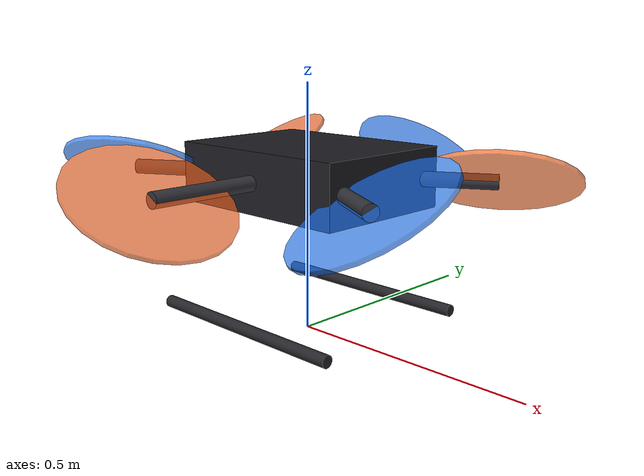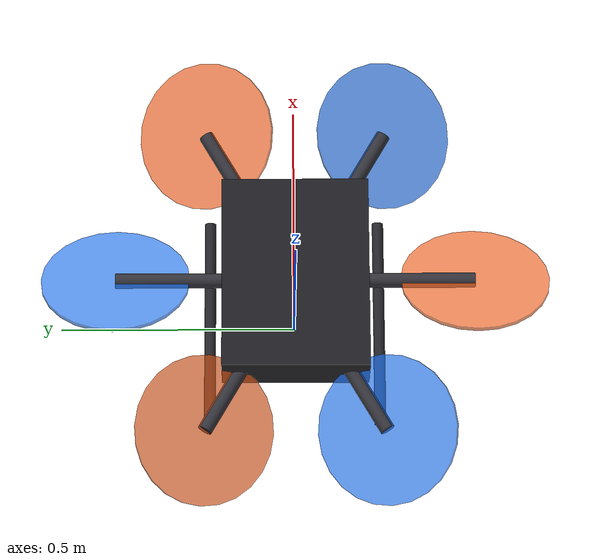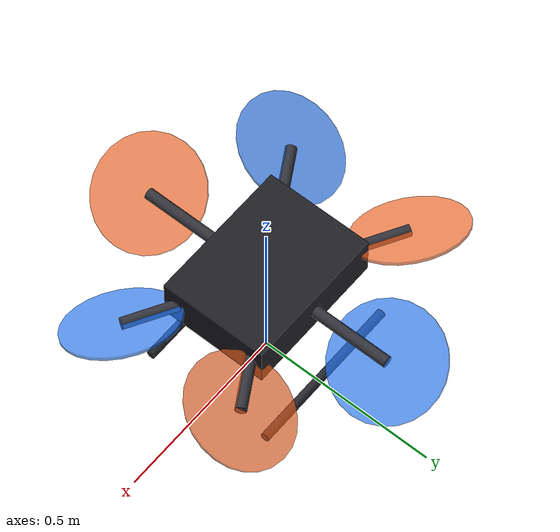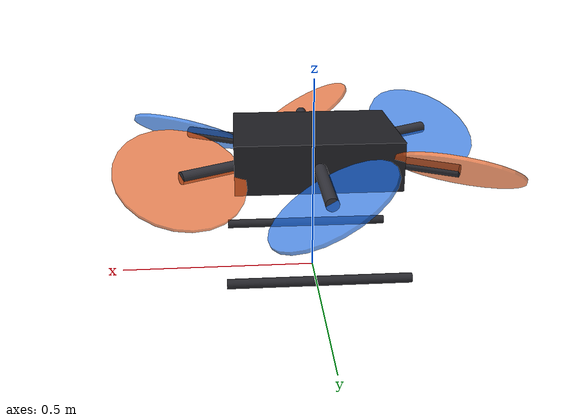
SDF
<?xml version="1.0" encoding="UTF-8"?>
<sdf version="1.9">
  <model name="am_tilted_hex">
    <self_collide>false</self_collide>
    <static>false</static>

    <!-- Gazebo body axes are FLU. PX4 airframe vectors are converted from FRD
         with [x, y, z]_FLU = [x, -y, -z]_FRD. -->
    <link name="base_link">
      <pose>0 0 0.32 0 0 0</pose>
      <inertial>
        <mass>7.018</mass>
        <inertia>
          <!-- Planar six-point-ring surrogate, pending system identification. -->
          <ixx>0.476385</ixx>
          <ixy>0</ixy>
          <ixz>0</ixz>
          <iyy>0.476385</iyy>
          <iyz>0</iyz>
          <izz>0.952770</izz>
        </inertia>
      </inertial>

      <collision name="body_collision">
        <geometry>
          <box><size>0.40 0.30 0.12</size></box>
        </geometry>
        <surface>
          <contact><ode><min_depth>0.001</min_depth><max_vel>0</max_vel></ode></contact>
          <friction><ode/></friction>
        </surface>
      </collision>
      <visual name="body_visual">
        <geometry>
          <box><size>0.40 0.30 0.12</size></box>
        </geometry>
        <material><diffuse>0.12 0.12 0.14 1</diffuse></material>
      </visual>

      <!-- Primitive-only arms keep this reference model independent of CAD. -->
      <visual name="arm_0_visual">
        <pose>0 -0.18415 0 0 1.570796 -1.570796</pose>
        <geometry><cylinder><radius>0.015</radius><length>0.3683</length></cylinder></geometry>
        <material><diffuse>0.20 0.20 0.23 1</diffuse></material>
      </visual>
      <visual name="arm_1_visual">
        <pose>0 0.18415 0 0 1.570796 1.570796</pose>
        <geometry><cylinder><radius>0.015</radius><length>0.3683</length></cylinder></geometry>
        <material><diffuse>0.20 0.20 0.23 1</diffuse></material>
      </visual>
      <visual name="arm_2_visual">
        <pose>0.1594785 0.092075 0 0 1.570796 0.523599</pose>
        <geometry><cylinder><radius>0.015</radius><length>0.3683</length></cylinder></geometry>
        <material><diffuse>0.20 0.20 0.23 1</diffuse></material>
      </visual>
      <visual name="arm_3_visual">
        <pose>-0.1594785 -0.092075 0 0 1.570796 -2.617994</pose>
        <geometry><cylinder><radius>0.015</radius><length>0.3683</length></cylinder></geometry>
        <material><diffuse>0.20 0.20 0.23 1</diffuse></material>
      </visual>
      <visual name="arm_4_visual">
        <pose>0.1594785 -0.092075 0 0 1.570796 -0.523599</pose>
        <geometry><cylinder><radius>0.015</radius><length>0.3683</length></cylinder></geometry>
        <material><diffuse>0.20 0.20 0.23 1</diffuse></material>
      </visual>
      <visual name="arm_5_visual">
        <pose>-0.1594785 0.092075 0 0 1.570796 2.617994</pose>
        <geometry><cylinder><radius>0.015</radius><length>0.3683</length></cylinder></geometry>
        <material><diffuse>0.20 0.20 0.23 1</diffuse></material>
      </visual>

      <collision name="left_skid_collision">
        <pose>0 0.18 -0.275 0 1.570796 0</pose>
        <geometry><cylinder><radius>0.012</radius><length>0.45</length></cylinder></geometry>
        <surface><contact><ode/></contact><friction><ode/></friction></surface>
      </collision>
      <visual name="left_skid_visual">
        <pose>0 0.18 -0.275 0 1.570796 0</pose>
        <geometry><cylinder><radius>0.012</radius><length>0.45</length></cylinder></geometry>
        <material><diffuse>0.15 0.15 0.17 1</diffuse></material>
      </visual>
      <collision name="right_skid_collision">
        <pose>0 -0.18 -0.275 0 1.570796 0</pose>
        <geometry><cylinder><radius>0.012</radius><length>0.45</length></cylinder></geometry>
        <surface><contact><ode/></contact><friction><ode/></friction></surface>
      </collision>
      <visual name="right_skid_visual">
        <pose>0 -0.18 -0.275 0 1.570796 0</pose>
        <geometry><cylinder><radius>0.012</radius><length>0.45</length></cylinder></geometry>
        <material><diffuse>0.15 0.15 0.17 1</diffuse></material>
      </visual>

      <sensor name="air_pressure_sensor" type="air_pressure">
        <gz_frame_id>base_link</gz_frame_id>
        <always_on>1</always_on>
        <update_rate>50</update_rate>
        <air_pressure><pressure><noise type="gaussian"><mean>0</mean><stddev>0.01</stddev></noise></pressure></air_pressure>
      </sensor>
      <sensor name="imu_sensor" type="imu">
        <gz_frame_id>base_link</gz_frame_id>
        <always_on>1</always_on>
        <update_rate>250</update_rate>
        <imu>
          <angular_velocity>
            <x><noise type="gaussian"><stddev>0.00018665</stddev></noise></x>
            <y><noise type="gaussian"><stddev>0.00018665</stddev></noise></y>
            <z><noise type="gaussian"><stddev>0.00018665</stddev></noise></z>
          </angular_velocity>
          <linear_acceleration>
            <x><noise type="gaussian"><stddev>0.00186</stddev></noise></x>
            <y><noise type="gaussian"><stddev>0.00186</stddev></noise></y>
            <z><noise type="gaussian"><stddev>0.00186</stddev></noise></z>
          </linear_acceleration>
        </imu>
      </sensor>
      <sensor name="magnetometer_sensor" type="magnetometer">
        <gz_frame_id>base_link</gz_frame_id>
        <always_on>1</always_on>
        <update_rate>100</update_rate>
        <magnetometer>
          <!-- Match the PX4 Harmonic reference sensor until measured AM noise is available. -->
          <x><noise type="gaussian"><stddev>0.0001</stddev></noise></x>
          <y><noise type="gaussian"><stddev>0.0001</stddev></noise></y>
          <z><noise type="gaussian"><stddev>0.0001</stddev></noise></z>
        </magnetometer>
      </sensor>
      <sensor name="navsat_sensor" type="navsat">
        <gz_frame_id>base_link</gz_frame_id>
        <always_on>1</always_on>
        <update_rate>30</update_rate>
      </sensor>
    </link>

    <!-- Rotor link poses rotate local +Z onto the converted FLU thrust axis. -->
    <link name="rotor_0">
      <pose>0 -0.3683 0.32 0 0.523599 0</pose>
      <inertial><mass>0.001</mass><inertia><ixx>0.0000116</ixx><iyy>0.0000116</iyy><izz>0.0000232</izz></inertia></inertial>
      <visual name="rotor_0_visual"><geometry><cylinder><radius>0.1524</radius><length>0.008</length></cylinder></geometry><material><diffuse>0.95 0.38 0.12 0.7</diffuse></material></visual>
    </link>
    <joint name="rotor_0_joint" type="revolute">
      <parent>base_link</parent><child>rotor_0</child>
      <axis><xyz expressed_in="__model__">0.5 0 0.866025</xyz><limit><lower>-1e16</lower><upper>1e16</upper></limit></axis>
    </joint>

    <link name="rotor_1">
      <pose>0 0.3683 0.32 0 0.523599 0</pose>
      <inertial><mass>0.001</mass><inertia><ixx>0.0000116</ixx><iyy>0.0000116</iyy><izz>0.0000232</izz></inertia></inertial>
      <visual name="rotor_1_visual"><geometry><cylinder><radius>0.1524</radius><length>0.008</length></cylinder></geometry><material><diffuse>0.12 0.45 0.95 0.7</diffuse></material></visual>
    </link>
    <joint name="rotor_1_joint" type="revolute">
      <parent>base_link</parent><child>rotor_1</child>
      <axis><xyz expressed_in="__model__">0.5 0 0.866025</xyz><limit><lower>-1e16</lower><upper>1e16</upper></limit></axis>
    </joint>

    <link name="rotor_2">
      <pose>0.318957 0.18415 0.32 0 0.523599 2.094395</pose>
      <inertial><mass>0.001</mass><inertia><ixx>0.0000116</ixx><iyy>0.0000116</iyy><izz>0.0000232</izz></inertia></inertial>
      <visual name="rotor_2_visual"><geometry><cylinder><radius>0.1524</radius><length>0.008</length></cylinder></geometry><material><diffuse>0.95 0.38 0.12 0.7</diffuse></material></visual>
    </link>
    <joint name="rotor_2_joint" type="revolute">
      <parent>base_link</parent><child>rotor_2</child>
      <axis><xyz expressed_in="__model__">-0.25 0.4330125 0.866025</xyz><limit><lower>-1e16</lower><upper>1e16</upper></limit></axis>
    </joint>

    <link name="rotor_3">
      <pose>-0.318957 -0.18415 0.32 0 0.523599 2.094395</pose>
      <inertial><mass>0.001</mass><inertia><ixx>0.0000116</ixx><iyy>0.0000116</iyy><izz>0.0000232</izz></inertia></inertial>
      <visual name="rotor_3_visual"><geometry><cylinder><radius>0.1524</radius><length>0.008</length></cylinder></geometry><material><diffuse>0.12 0.45 0.95 0.7</diffuse></material></visual>
    </link>
    <joint name="rotor_3_joint" type="revolute">
      <parent>base_link</parent><child>rotor_3</child>
      <axis><xyz expressed_in="__model__">-0.25 0.4330125 0.866025</xyz><limit><lower>-1e16</lower><upper>1e16</upper></limit></axis>
    </joint>

    <link name="rotor_4">
      <pose>0.318957 -0.18415 0.32 0 0.523599 -2.094395</pose>
      <inertial><mass>0.001</mass><inertia><ixx>0.0000116</ixx><iyy>0.0000116</iyy><izz>0.0000232</izz></inertia></inertial>
      <visual name="rotor_4_visual"><geometry><cylinder><radius>0.1524</radius><length>0.008</length></cylinder></geometry><material><diffuse>0.12 0.45 0.95 0.7</diffuse></material></visual>
    </link>
    <joint name="rotor_4_joint" type="revolute">
      <parent>base_link</parent><child>rotor_4</child>
      <axis><xyz expressed_in="__model__">-0.25 -0.4330125 0.866025</xyz><limit><lower>-1e16</lower><upper>1e16</upper></limit></axis>
    </joint>

    <link name="rotor_5">
      <pose>-0.318957 0.18415 0.32 0 0.523599 -2.094395</pose>
      <inertial><mass>0.001</mass><inertia><ixx>0.0000116</ixx><iyy>0.0000116</iyy><izz>0.0000232</izz></inertia></inertial>
      <visual name="rotor_5_visual"><geometry><cylinder><radius>0.1524</radius><length>0.008</length></cylinder></geometry><material><diffuse>0.95 0.38 0.12 0.7</diffuse></material></visual>
    </link>
    <joint name="rotor_5_joint" type="revolute">
      <parent>base_link</parent><child>rotor_5</child>
      <axis><xyz expressed_in="__model__">-0.25 -0.4330125 0.866025</xyz><limit><lower>-1e16</lower><upper>1e16</upper></limit></axis>
    </joint>

    <!-- 26.5127 N / (1500 rad/s)^2. This is a simulation authority surrogate. -->
    <plugin filename="gz-sim-multicopter-motor-model-system" name="gz::sim::systems::MulticopterMotorModel">
      <jointName>rotor_0_joint</jointName><linkName>rotor_0</linkName><turningDirection>cw</turningDirection>
      <timeConstantUp>0.0125</timeConstantUp><timeConstantDown>0.025</timeConstantDown><maxRotVelocity>1500</maxRotVelocity>
      <motorConstant>1.178341e-05</motorConstant><momentConstant>0.05</momentConstant><commandSubTopic>command/motor_speed</commandSubTopic><motorNumber>0</motorNumber>
      <rotorDragCoefficient>8.06428e-05</rotorDragCoefficient><rollingMomentCoefficient>1e-06</rollingMomentCoefficient><rotorVelocitySlowdownSim>10</rotorVelocitySlowdownSim><motorType>velocity</motorType>
    </plugin>
    <plugin filename="gz-sim-multicopter-motor-model-system" name="gz::sim::systems::MulticopterMotorModel">
      <jointName>rotor_1_joint</jointName><linkName>rotor_1</linkName><turningDirection>ccw</turningDirection>
      <timeConstantUp>0.0125</timeConstantUp><timeConstantDown>0.025</timeConstantDown><maxRotVelocity>1500</maxRotVelocity>
      <motorConstant>1.178341e-05</motorConstant><momentConstant>0.05</momentConstant><commandSubTopic>command/motor_speed</commandSubTopic><motorNumber>1</motorNumber>
      <rotorDragCoefficient>8.06428e-05</rotorDragCoefficient><rollingMomentCoefficient>1e-06</rollingMomentCoefficient><rotorVelocitySlowdownSim>10</rotorVelocitySlowdownSim><motorType>velocity</motorType>
    </plugin>
    <plugin filename="gz-sim-multicopter-motor-model-system" name="gz::sim::systems::MulticopterMotorModel">
      <jointName>rotor_2_joint</jointName><linkName>rotor_2</linkName><turningDirection>cw</turningDirection>
      <timeConstantUp>0.0125</timeConstantUp><timeConstantDown>0.025</timeConstantDown><maxRotVelocity>1500</maxRotVelocity>
      <motorConstant>1.178341e-05</motorConstant><momentConstant>0.05</momentConstant><commandSubTopic>command/motor_speed</commandSubTopic><motorNumber>2</motorNumber>
      <rotorDragCoefficient>8.06428e-05</rotorDragCoefficient><rollingMomentCoefficient>1e-06</rollingMomentCoefficient><rotorVelocitySlowdownSim>10</rotorVelocitySlowdownSim><motorType>velocity</motorType>
    </plugin>
    <plugin filename="gz-sim-multicopter-motor-model-system" name="gz::sim::systems::MulticopterMotorModel">
      <jointName>rotor_3_joint</jointName><linkName>rotor_3</linkName><turningDirection>ccw</turningDirection>
      <timeConstantUp>0.0125</timeConstantUp><timeConstantDown>0.025</timeConstantDown><maxRotVelocity>1500</maxRotVelocity>
      <motorConstant>1.178341e-05</motorConstant><momentConstant>0.05</momentConstant><commandSubTopic>command/motor_speed</commandSubTopic><motorNumber>3</motorNumber>
      <rotorDragCoefficient>8.06428e-05</rotorDragCoefficient><rollingMomentCoefficient>1e-06</rollingMomentCoefficient><rotorVelocitySlowdownSim>10</rotorVelocitySlowdownSim><motorType>velocity</motorType>
    </plugin>
    <plugin filename="gz-sim-multicopter-motor-model-system" name="gz::sim::systems::MulticopterMotorModel">
      <jointName>rotor_4_joint</jointName><linkName>rotor_4</linkName><turningDirection>ccw</turningDirection>
      <timeConstantUp>0.0125</timeConstantUp><timeConstantDown>0.025</timeConstantDown><maxRotVelocity>1500</maxRotVelocity>
      <motorConstant>1.178341e-05</motorConstant><momentConstant>0.05</momentConstant><commandSubTopic>command/motor_speed</commandSubTopic><motorNumber>4</motorNumber>
      <rotorDragCoefficient>8.06428e-05</rotorDragCoefficient><rollingMomentCoefficient>1e-06</rollingMomentCoefficient><rotorVelocitySlowdownSim>10</rotorVelocitySlowdownSim><motorType>velocity</motorType>
    </plugin>
    <plugin filename="gz-sim-multicopter-motor-model-system" name="gz::sim::systems::MulticopterMotorModel">
      <jointName>rotor_5_joint</jointName><linkName>rotor_5</linkName><turningDirection>cw</turningDirection>
      <timeConstantUp>0.0125</timeConstantUp><timeConstantDown>0.025</timeConstantDown><maxRotVelocity>1500</maxRotVelocity>
      <motorConstant>1.178341e-05</motorConstant><momentConstant>0.05</momentConstant><commandSubTopic>command/motor_speed</commandSubTopic><motorNumber>5</motorNumber>
      <rotorDragCoefficient>8.06428e-05</rotorDragCoefficient><rollingMomentCoefficient>1e-06</rollingMomentCoefficient><rotorVelocitySlowdownSim>10</rotorVelocitySlowdownSim><motorType>velocity</motorType>
    </plugin>
    <plugin filename="MotorFailurePlugin" name="gz::sim::systems::MotorFailureSystem"/>
  </model>
</sdf>
